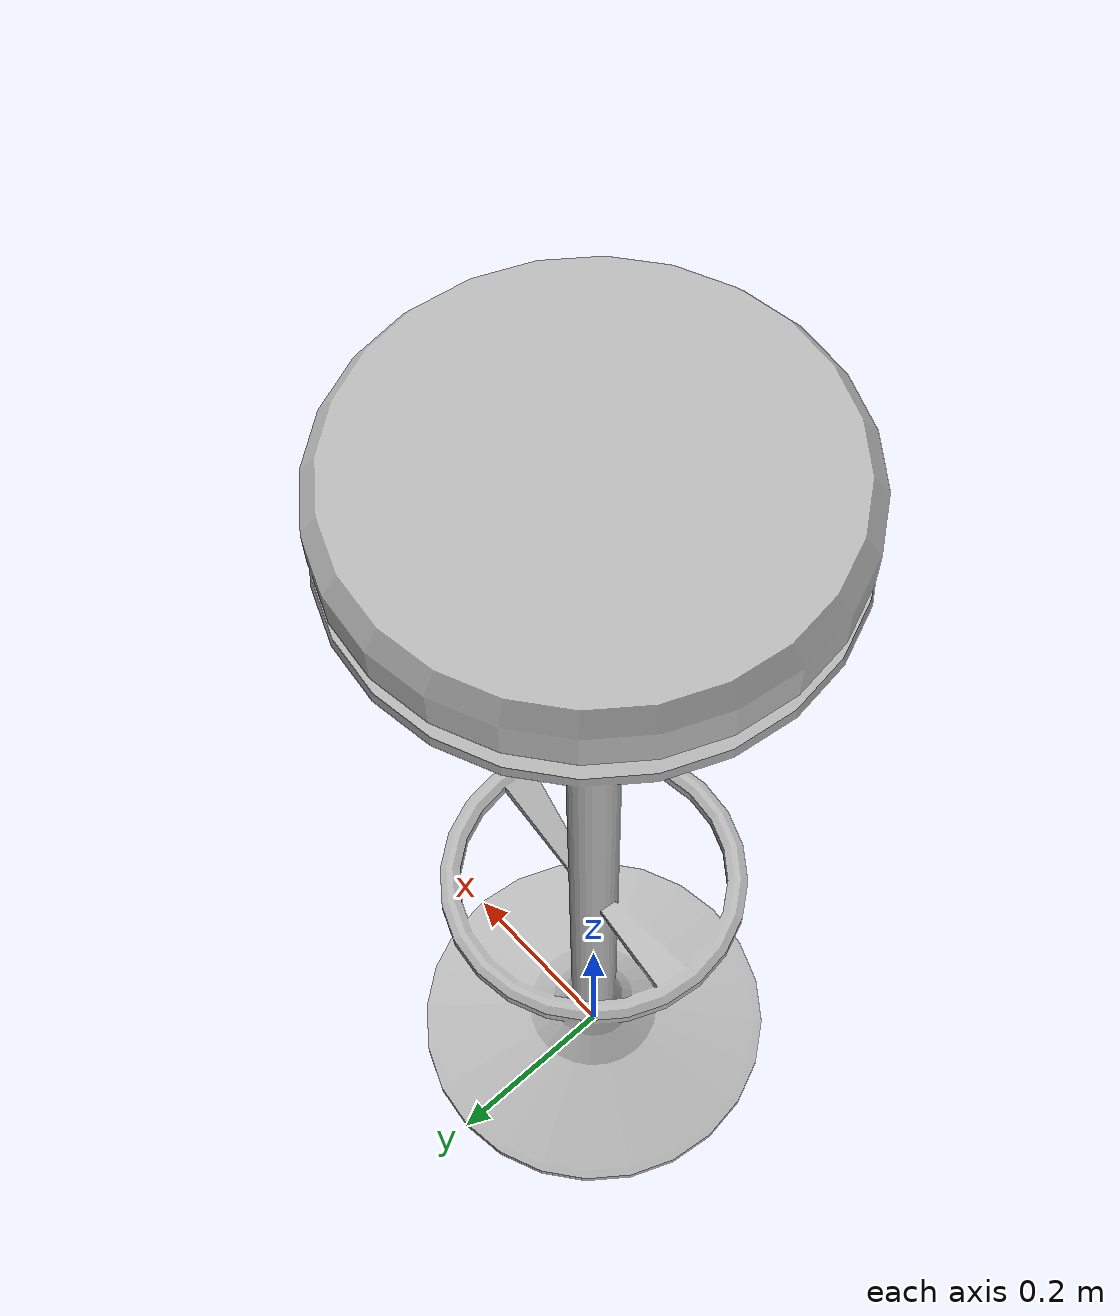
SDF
<?xml version='1.0'?>
<sdf version='1.4'>
  <model name='88'>
    <pose>0 0 0 0 0 0</pose>
    <static>true</static>
    <link name='link'>
      <collision name='collision'>
        <pose>0 0 0 0 0 0</pose>
        <geometry>
          <box>
            <size>0.40365 0.40365 2</size>
          </box>
        </geometry>
      </collision>
      <visual name='visual'>
        <pose>0 0 0 0 0 0</pose>
        <geometry>
          <mesh><uri>model://88/88.dae</uri></mesh>
        </geometry>
      </visual>
    </link>
  </model>
</sdf>
